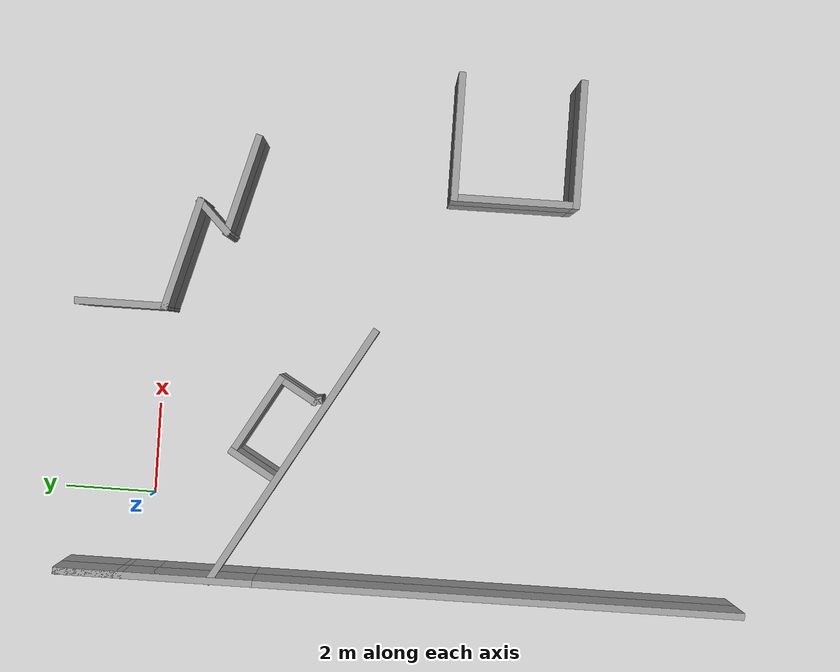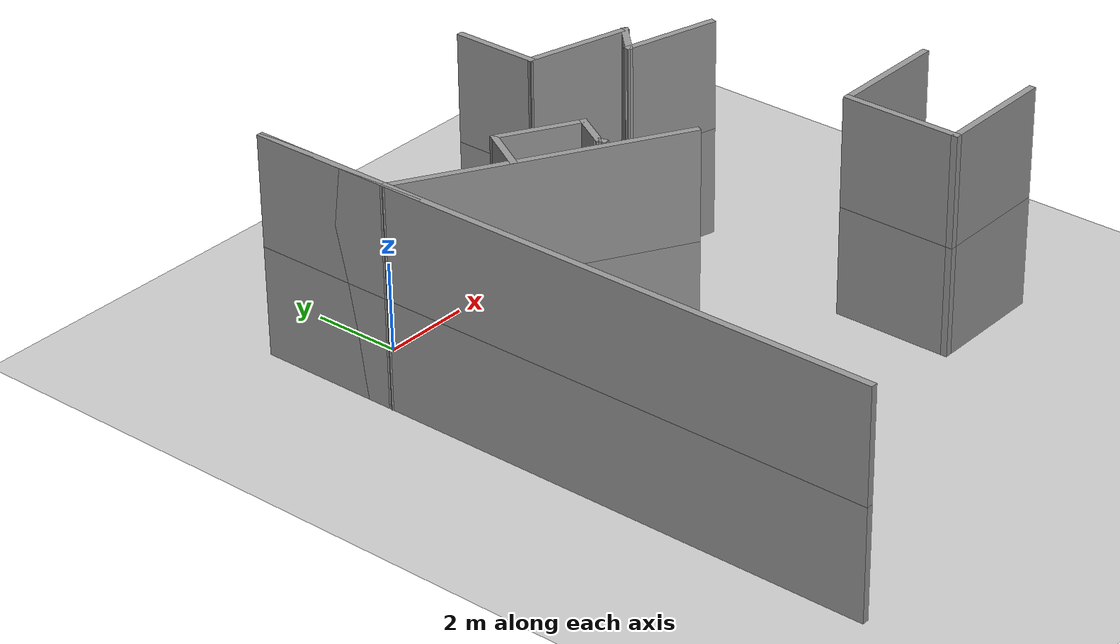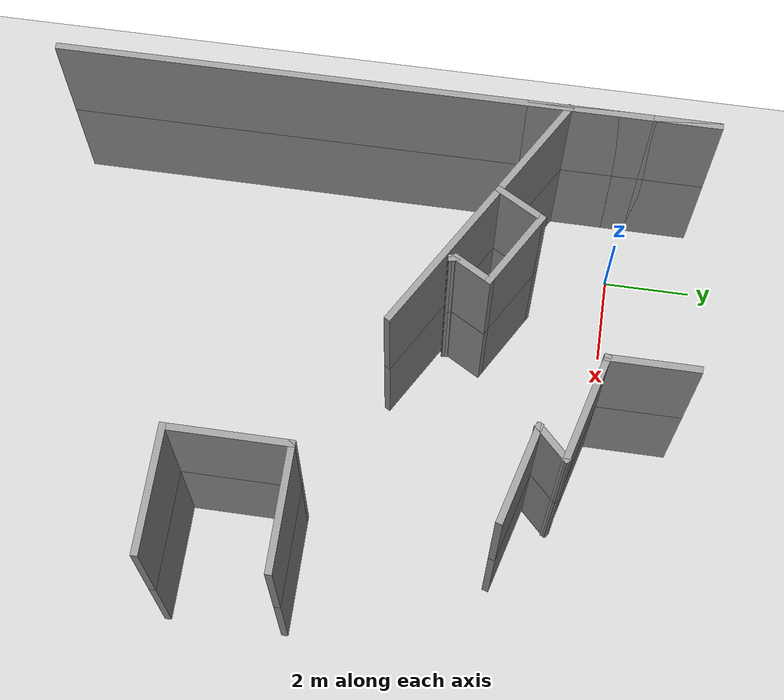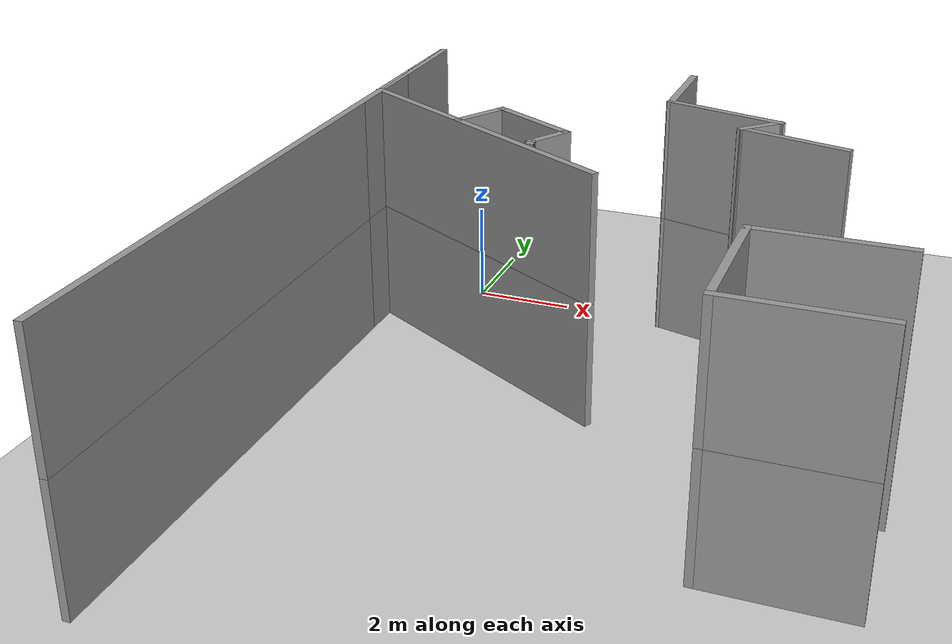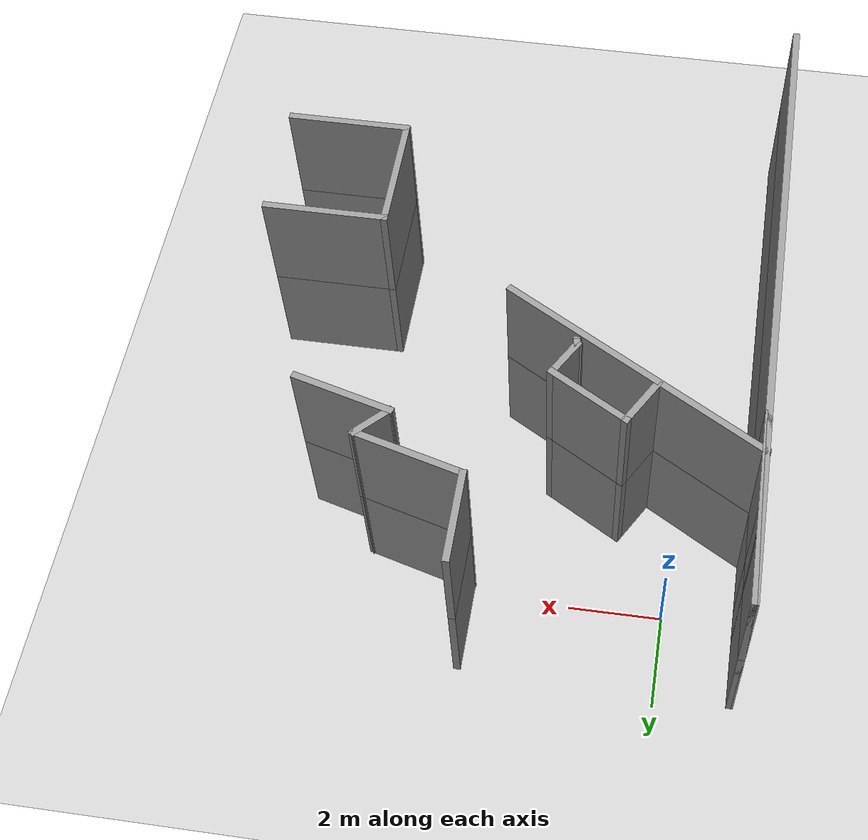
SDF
<sdf version="1.7">
 <world name="default">
  <model name="ground_plane">
   <static>1</static>
   <link name="link">
    <collision name="collision">
     <geometry><plane><normal>0 0 1</normal><size>100 100</size></plane></geometry>
     <surface><friction><ode><mu>100</mu><mu2>50</mu2></ode></friction></surface>
    </collision>
    <visual name="visual">
     <cast_shadows>0</cast_shadows>
     <geometry><plane><normal>0 0 1</normal><size>100 100</size></plane></geometry>
     <material>
      <script><uri>file://media/materials/scripts/gazebo.material</uri><name>Gazebo/Grey</name></script>
     </material>
    </visual>
   </link>
  </model>
  <model name="room_with_stairs">
   <pose>14.4299 -5.56754 0 0 -0 0</pose>
   <link name="Wall_1">
    <collision name="Wall_1_Collision">
     <geometry><box><size>1.5 0.15 2.5</size></box></geometry>
     <pose>0 0 1.25 0 -0 0</pose>
    </collision>
    <visual name="Wall_1_Visual">
     <pose>0 0 1.25 0 -0 0</pose>
     <geometry><box><size>1.5 0.15 2.5</size></box></geometry>
     <material>
      <script><uri>file://media/materials/scripts/gazebo.material</uri><name>Gazebo/Grey</name></script>
      <ambient>1 1 1 1</ambient>
     </material>
     <meta><layer>0</layer></meta>
    </visual>
    <pose>-16.0363 6.625 0 0 -0 1.5708</pose>
   </link>
   <link name="Wall_10">
    <collision name="Wall_10_Collision">
     <geometry><box><size>2 0.15 2.5</size></box></geometry>
     <pose>0 0 1.25 0 -0 0</pose>
    </collision>
    <visual name="Wall_10_Visual">
     <pose>0 0 1.25 0 -0 0</pose>
     <geometry><box><size>2 0.15 2.5</size></box></geometry>
     <material>
      <script><uri>file://media/materials/scripts/gazebo.material</uri><name>Gazebo/Grey</name></script>
      <ambient>1 1 1 1</ambient>
     </material>
     <meta><layer>0</layer></meta>
    </visual>
    <pose>-10.271 6.29375 0 0 -0 -1.5708</pose>
   </link>
   <link name="Wall_11">
    <collision name="Wall_11_Collision">
     <geometry><box><size>2.5 0.15 2.5</size></box></geometry>
     <pose>0 0 1.25 0 -0 0</pose>
    </collision>
    <visual name="Wall_11_Visual">
     <pose>0 0 1.25 0 -0 0</pose>
     <geometry><box><size>2.5 0.15 2.5</size></box></geometry>
     <material>
      <script><uri>file://media/materials/scripts/gazebo.material</uri><name>Gazebo/Grey</name></script>
      <ambient>1 1 1 1</ambient>
     </material>
     <meta><layer>0</layer></meta>
    </visual>
    <pose>-9.13605 5.06464 0 0 -0 -0.261799</pose>
   </link>
   <link name="Wall_12">
    <collision name="Wall_12_Collision">
     <geometry><box><size>1 0.15 2.5</size></box></geometry>
     <pose>0 0 1.25 0 -0 0</pose>
    </collision>
    <visual name="Wall_12_Visual">
     <pose>0 0 1.25 0 -0 0</pose>
     <geometry><box><size>1 0.15 2.5</size></box></geometry>
     <material>
      <script><uri>file://media/materials/scripts/gazebo.material</uri><name>Gazebo/Grey</name></script>
      <ambient>1 1 1 1</ambient>
     </material>
     <meta><layer>0</layer></meta>
    </visual>
    <pose>-8.30161 4.46001 0 0 -0 -2.35619</pose>
   </link>
   <link name="Wall_13">
    <collision name="Wall_13_Collision">
     <geometry><box><size>2.25 0.15 2.5</size></box></geometry>
     <pose>0 0 1.25 0 -0 0</pose>
    </collision>
    <visual name="Wall_13_Visual">
     <pose>0 0 1.25 0 -0 0</pose>
     <geometry><box><size>2.25 0.15 2.5</size></box></geometry>
     <material>
      <script><uri>file://media/materials/scripts/gazebo.material</uri><name>Gazebo/Grey</name></script>
      <ambient>1 1 1 1</ambient>
     </material>
     <meta><layer>0</layer></meta>
    </visual>
    <pose>-7.58791 3.88773 0 0 -0 -0.261799</pose>
   </link>
   <link name="Wall_19">
    <collision name="Wall_19_Collision">
     <geometry><box><size>1.25 0.15 2.5</size></box></geometry>
     <pose>0 0 1.25 0 -0 0</pose>
    </collision>
    <visual name="Wall_19_Visual">
     <pose>0 0 1.25 0 -0 0</pose>
     <geometry><box><size>1.25 0.15 2.5</size></box></geometry>
     <material>
      <script><uri>file://media/materials/scripts/gazebo.material</uri><name>Gazebo/Grey</name></script>
      <ambient>1 1 1 1</ambient>
     </material>
     <meta><layer>0</layer></meta>
    </visual>
    <pose>-13.5338 3.25283 0 0 -0 1.0472</pose>
   </link>
   <link name="Wall_2">
    <collision name="Wall_2_Collision">
     <geometry><box><size>4.25 0.15 2.5</size></box></geometry>
     <pose>0 0 1.25 0 -0 0</pose>
    </collision>
    <visual name="Wall_2_Visual">
     <pose>0 0 1.25 0 -0 0</pose>
     <geometry><box><size>4.25 0.15 2.5</size></box></geometry>
     <material>
      <script><uri>file://media/materials/scripts/gazebo.material</uri><name>Gazebo/Grey</name></script>
      <ambient>1 1 1 1</ambient>
     </material>
     <meta><layer>0</layer></meta>
    </visual>
    <pose>-16.0363 5.25 0 0 -0 -1.5708</pose>
   </link>
   <link name="Wall_20">
    <collision name="Wall_20_Collision">
     <geometry><box><size>2 0.15 2.5</size></box></geometry>
     <pose>0 0 1.25 0 -0 0</pose>
    </collision>
    <visual name="Wall_20_Visual">
     <pose>0 0 1.25 0 -0 0</pose>
     <geometry><box><size>2 0.15 2.5</size></box></geometry>
     <material>
      <script><uri>file://media/materials/scripts/gazebo.material</uri><name>Gazebo/Grey</name></script>
      <ambient>1 1 1 1</ambient>
     </material>
     <meta><layer>0</layer></meta>
    </visual>
    <pose>-12.4578 3.26665 0 0 -0 -0.523599</pose>
   </link>
   <link name="Wall_21">
    <collision name="Wall_21_Collision">
     <geometry><box><size>1 0.15 2.5</size></box></geometry>
     <pose>0 0 1.25 0 -0 0</pose>
    </collision>
    <visual name="Wall_21_Visual">
     <pose>0 0 1.25 0 -0 0</pose>
     <geometry><box><size>1 0.15 2.5</size></box></geometry>
     <material>
      <script><uri>file://media/materials/scripts/gazebo.material</uri><name>Gazebo/Grey</name></script>
      <ambient>1 1 1 1</ambient>
     </material>
     <meta><layer>0</layer></meta>
    </visual>
    <pose>-11.8692 2.43609 0 0 -0 -2.0944</pose>
   </link>
   <link name="Wall_22">
    <collision name="Wall_22_Collision">
     <geometry><box><size>0.25 0.15 2.5</size></box></geometry>
     <pose>0 0 1.25 0 -0 0</pose>
    </collision>
    <visual name="Wall_22_Visual">
     <pose>0 0 1.25 0 -0 0</pose>
     <geometry><box><size>0.25 0.15 2.5</size></box></geometry>
     <material>
      <script><uri>file://media/materials/scripts/gazebo.material</uri><name>Gazebo/Grey</name></script>
      <ambient>1 1 1 1</ambient>
     </material>
     <meta><layer>0</layer></meta>
    </visual>
    <pose>-12.0688 2.01973 0 0 -0 -1.309</pose>
   </link>
   <link name="Wall_23">
    <collision name="Wall_23_Collision">
     <geometry><box><size>0.15 0.15 2.5</size></box></geometry>
     <pose>0 0 1.25 0 -0 0</pose>
    </collision>
    <visual name="Wall_23_Visual">
     <pose>0 0 1.25 0 -0 0</pose>
     <geometry><box><size>0.15 0.15 2.5</size></box></geometry>
     <material>
      <script><uri>file://media/materials/scripts/gazebo.material</uri><name>Gazebo/Grey</name></script>
      <ambient>1 1 1 1</ambient>
     </material>
     <meta><layer>0</layer></meta>
    </visual>
    <pose>-12.0558 1.97143 0 0 -0 0</pose>
   </link>
   <link name="Wall_29">
    <collision name="Wall_29_Collision">
     <geometry><box><size>2.75 0.15 2.5</size></box></geometry>
     <pose>0 0 1.25 0 -0 0</pose>
    </collision>
    <visual name="Wall_29_Visual">
     <pose>0 0 1.25 0 -0 0</pose>
     <geometry><box><size>2.75 0.15 2.5</size></box></geometry>
     <material>
      <script><uri>file://media/materials/scripts/gazebo.material</uri><name>Gazebo/Grey</name></script>
      <ambient>1 1 1 1</ambient>
     </material>
     <meta><layer>0</layer></meta>
    </visual>
    <pose>-6.25287 -0.620172 0 0 -0 0</pose>
   </link>
   <link name="Wall_3">
    <collision name="Wall_3_Collision">
     <geometry><box><size>4.25 0.15 2.5</size></box></geometry>
     <pose>0 0 1.25 0 -0 0</pose>
    </collision>
    <visual name="Wall_3_Visual">
     <pose>0 0 1.25 0 -0 0</pose>
     <geometry><box><size>4.25 0.15 2.5</size></box></geometry>
     <material>
      <script><uri>file://media/materials/scripts/gazebo.material</uri><name>Gazebo/Grey</name></script>
      <ambient>1 1 1 1</ambient>
     </material>
     <meta><layer>0</layer></meta>
    </visual>
    <pose>-16.0363 5.25 0 0 -0 1.5708</pose>
   </link>
   <link name="Wall_31">
    <collision name="Wall_31_Collision">
     <geometry><box><size>2.75 0.15 2.5</size></box></geometry>
     <pose>0 0 1.25 0 -0 0</pose>
    </collision>
    <visual name="Wall_31_Visual">
     <pose>0 0 1.25 0 -0 0</pose>
     <geometry><box><size>2.75 0.15 2.5</size></box></geometry>
     <material>
      <script><uri>file://media/materials/scripts/gazebo.material</uri><name>Gazebo/Grey</name></script>
      <ambient>1 1 1 1</ambient>
     </material>
     <meta><layer>0</layer></meta>
    </visual>
    <pose>-6.25287 -3.22017 0 0 -0 3.14159</pose>
   </link>
   <link name="Wall_32">
    <collision name="Wall_32_Collision">
     <geometry><box><size>2.75 0.15 2.5</size></box></geometry>
     <pose>0 0 1.25 0 -0 0</pose>
    </collision>
    <visual name="Wall_32_Visual">
     <pose>0 0 1.25 0 -0 0</pose>
     <geometry><box><size>2.75 0.15 2.5</size></box></geometry>
     <material>
      <script><uri>file://media/materials/scripts/gazebo.material</uri><name>Gazebo/Grey</name></script>
      <ambient>1 1 1 1</ambient>
     </material>
     <meta><layer>0</layer></meta>
    </visual>
    <pose>-7.55287 -1.92017 0 0 -0 1.5708</pose>
   </link>
   <link name="Wall_39">
    <collision name="Wall_39_Collision">
     <geometry><box><size>1.5 0.15 2.5</size></box></geometry>
     <pose>0 0 1.25 0 -0 0</pose>
    </collision>
    <visual name="Wall_39_Visual">
     <pose>0 0 1.25 0 -0 0</pose>
     <geometry><box><size>1.5 0.15 2.5</size></box></geometry>
     <material>
      <script><uri>file://media/materials/scripts/gazebo.material</uri><name>Gazebo/Grey</name></script>
      <ambient>1 1 1 1</ambient>
     </material>
     <meta><layer>1</layer></meta>
    </visual>
    <pose>-16.0363 6.625 2.5 0 -0 1.5708</pose>
   </link>
   <link name="Wall_40">
    <collision name="Wall_40_Collision">
     <geometry><box><size>4.25 0.15 2.5</size></box></geometry>
     <pose>0 0 1.25 0 -0 0</pose>
    </collision>
    <visual name="Wall_40_Visual">
     <pose>0 0 1.25 0 -0 0</pose>
     <geometry><box><size>4.25 0.15 2.5</size></box></geometry>
     <material>
      <script><uri>file://media/materials/scripts/gazebo.material</uri><name>Gazebo/Grey</name></script>
      <ambient>1 1 1 1</ambient>
     </material>
     <meta><layer>1</layer></meta>
    </visual>
    <pose>-16.0363 5.25 2.5 0 -0 -1.5708</pose>
   </link>
   <link name="Wall_41">
    <collision name="Wall_41_Collision">
     <geometry><box><size>4.25 0.15 2.5</size></box></geometry>
     <pose>0 0 1.25 0 -0 0</pose>
    </collision>
    <visual name="Wall_41_Visual">
     <pose>0 0 1.25 0 -0 0</pose>
     <geometry><box><size>4.25 0.15 2.5</size></box></geometry>
     <material>
      <script><uri>file://media/materials/scripts/gazebo.material</uri><name>Gazebo/Grey</name></script>
      <ambient>1 1 1 1</ambient>
     </material>
     <meta><layer>1</layer></meta>
    </visual>
    <pose>-16.0363 5.25 2.5 0 -0 1.5708</pose>
   </link>
   <link name="Wall_45">
    <collision name="Wall_45_Collision">
     <geometry><box><size>11.5 0.15 2.5</size></box></geometry>
     <pose>0 0 1.25 0 -0 0</pose>
    </collision>
    <visual name="Wall_45_Visual">
     <pose>0 0 1.25 0 -0 0</pose>
     <geometry><box><size>11.5 0.15 2.5</size></box></geometry>
     <material>
      <script><uri>file://media/materials/scripts/gazebo.material</uri><name>Gazebo/Grey</name></script>
      <ambient>1 1 1 1</ambient>
     </material>
     <meta><layer>1</layer></meta>
    </visual>
    <pose>-16.0363 -1.625 2.5 0 -0 1.5708</pose>
   </link>
   <link name="Wall_46">
    <collision name="Wall_46_Collision">
     <geometry><box><size>6.5 0.15 2.5</size></box></geometry>
     <pose>0 0 1.25 0 -0 0</pose>
    </collision>
    <visual name="Wall_46_Visual">
     <pose>0 0 1.25 0 -0 0</pose>
     <geometry><box><size>6.5 0.15 2.5</size></box></geometry>
     <material>
      <script><uri>file://media/materials/scripts/gazebo.material</uri><name>Gazebo/Grey</name></script>
      <ambient>1 1 1 1</ambient>
     </material>
     <meta><layer>1</layer></meta>
    </visual>
    <pose>-13.2866 2.4625 2.5 0 -0 -0.523599</pose>
   </link>
   <link name="Wall_47">
    <collision name="Wall_47_Collision">
     <geometry><box><size>2 0.15 2.5</size></box></geometry>
     <pose>0 0 1.25 0 -0 0</pose>
    </collision>
    <visual name="Wall_47_Visual">
     <pose>0 0 1.25 0 -0 0</pose>
     <geometry><box><size>2 0.15 2.5</size></box></geometry>
     <material>
      <script><uri>file://media/materials/scripts/gazebo.material</uri><name>Gazebo/Grey</name></script>
      <ambient>1 1 1 1</ambient>
     </material>
     <meta><layer>1</layer></meta>
    </visual>
    <pose>-10.271 6.29375 2.5 0 -0 -1.5708</pose>
   </link>
   <link name="Wall_48">
    <collision name="Wall_48_Collision">
     <geometry><box><size>2.5 0.15 2.5</size></box></geometry>
     <pose>0 0 1.25 0 -0 0</pose>
    </collision>
    <visual name="Wall_48_Visual">
     <pose>0 0 1.25 0 -0 0</pose>
     <geometry><box><size>2.5 0.15 2.5</size></box></geometry>
     <material>
      <script><uri>file://media/materials/scripts/gazebo.material</uri><name>Gazebo/Grey</name></script>
      <ambient>1 1 1 1</ambient>
     </material>
     <meta><layer>1</layer></meta>
    </visual>
    <pose>-9.13605 5.06464 2.5 0 -0 -0.261799</pose>
   </link>
   <link name="Wall_49">
    <collision name="Wall_49_Collision">
     <geometry><box><size>1 0.15 2.5</size></box></geometry>
     <pose>0 0 1.25 0 -0 0</pose>
    </collision>
    <visual name="Wall_49_Visual">
     <pose>0 0 1.25 0 -0 0</pose>
     <geometry><box><size>1 0.15 2.5</size></box></geometry>
     <material>
      <script><uri>file://media/materials/scripts/gazebo.material</uri><name>Gazebo/Grey</name></script>
      <ambient>1 1 1 1</ambient>
     </material>
     <meta><layer>1</layer></meta>
    </visual>
    <pose>-8.30161 4.46001 2.5 0 -0 -2.35619</pose>
   </link>
   <link name="Wall_50">
    <collision name="Wall_50_Collision">
     <geometry><box><size>2.25 0.15 2.5</size></box></geometry>
     <pose>0 0 1.25 0 -0 0</pose>
    </collision>
    <visual name="Wall_50_Visual">
     <pose>0 0 1.25 0 -0 0</pose>
     <geometry><box><size>2.25 0.15 2.5</size></box></geometry>
     <material>
      <script><uri>file://media/materials/scripts/gazebo.material</uri><name>Gazebo/Grey</name></script>
      <ambient>1 1 1 1</ambient>
     </material>
     <meta><layer>1</layer></meta>
    </visual>
    <pose>-7.58791 3.88773 2.5 0 -0 -0.261799</pose>
   </link>
   <link name="Wall_54">
    <collision name="Wall_54_Collision">
     <geometry><box><size>1.25 0.15 2.5</size></box></geometry>
     <pose>0 0 1.25 0 -0 0</pose>
    </collision>
    <visual name="Wall_54_Visual">
     <pose>0 0 1.25 0 -0 0</pose>
     <geometry><box><size>1.25 0.15 2.5</size></box></geometry>
     <material>
      <script><uri>file://media/materials/scripts/gazebo.material</uri><name>Gazebo/Grey</name></script>
      <ambient>1 1 1 1</ambient>
     </material>
     <meta><layer>1</layer></meta>
    </visual>
    <pose>-13.5338 3.25283 2.5 0 -0 1.0472</pose>
   </link>
   <link name="Wall_55">
    <collision name="Wall_55_Collision">
     <geometry><box><size>2 0.15 2.5</size></box></geometry>
     <pose>0 0 1.25 0 -0 0</pose>
    </collision>
    <visual name="Wall_55_Visual">
     <pose>0 0 1.25 0 -0 0</pose>
     <geometry><box><size>2 0.15 2.5</size></box></geometry>
     <material>
      <script><uri>file://media/materials/scripts/gazebo.material</uri><name>Gazebo/Grey</name></script>
      <ambient>1 1 1 1</ambient>
     </material>
     <meta><layer>1</layer></meta>
    </visual>
    <pose>-12.4578 3.26665 2.5 0 -0 -0.523599</pose>
   </link>
   <link name="Wall_56">
    <collision name="Wall_56_Collision">
     <geometry><box><size>1 0.15 2.5</size></box></geometry>
     <pose>0 0 1.25 0 -0 0</pose>
    </collision>
    <visual name="Wall_56_Visual">
     <pose>0 0 1.25 0 -0 0</pose>
     <geometry><box><size>1 0.15 2.5</size></box></geometry>
     <material>
      <script><uri>file://media/materials/scripts/gazebo.material</uri><name>Gazebo/Grey</name></script>
      <ambient>1 1 1 1</ambient>
     </material>
     <meta><layer>1</layer></meta>
    </visual>
    <pose>-11.8692 2.43609 2.5 0 -0 -2.0944</pose>
   </link>
   <link name="Wall_57">
    <collision name="Wall_57_Collision">
     <geometry><box><size>0.25 0.15 2.5</size></box></geometry>
     <pose>0 0 1.25 0 -0 0</pose>
    </collision>
    <visual name="Wall_57_Visual">
     <pose>0 0 1.25 0 -0 0</pose>
     <geometry><box><size>0.25 0.15 2.5</size></box></geometry>
     <material>
      <script><uri>file://media/materials/scripts/gazebo.material</uri><name>Gazebo/Grey</name></script>
      <ambient>1 1 1 1</ambient>
     </material>
     <meta><layer>1</layer></meta>
    </visual>
    <pose>-12.0688 2.01973 2.5 0 -0 -1.309</pose>
   </link>
   <link name="Wall_58">
    <collision name="Wall_58_Collision">
     <geometry><box><size>0.15 0.15 2.5</size></box></geometry>
     <pose>0 0 1.25 0 -0 0</pose>
    </collision>
    <visual name="Wall_58_Visual">
     <pose>0 0 1.25 0 -0 0</pose>
     <geometry><box><size>0.15 0.15 2.5</size></box></geometry>
     <material>
      <script><uri>file://media/materials/scripts/gazebo.material</uri><name>Gazebo/Grey</name></script>
      <ambient>1 1 1 1</ambient>
     </material>
     <meta><layer>1</layer></meta>
    </visual>
    <pose>-12.0558 1.97143 2.5 0 -0 0</pose>
   </link>
   <link name="Wall_62">
    <collision name="Wall_62_Collision">
     <geometry><box><size>2.75 0.15 2.5</size></box></geometry>
     <pose>0 0 1.25 0 -0 0</pose>
    </collision>
    <visual name="Wall_62_Visual">
     <pose>0 0 1.25 0 -0 0</pose>
     <geometry><box><size>2.75 0.15 2.5</size></box></geometry>
     <material>
      <script><uri>file://media/materials/scripts/gazebo.material</uri><name>Gazebo/Grey</name></script>
      <ambient>1 1 1 1</ambient>
     </material>
     <meta><layer>1</layer></meta>
    </visual>
    <pose>-6.25287 -0.620171 2.5 0 -0 0</pose>
   </link>
   <link name="Wall_64">
    <collision name="Wall_64_Collision">
     <geometry><box><size>2.75 0.15 2.5</size></box></geometry>
     <pose>0 0 1.25 0 -0 0</pose>
    </collision>
    <visual name="Wall_64_Visual">
     <pose>0 0 1.25 0 -0 0</pose>
     <geometry><box><size>2.75 0.15 2.5</size></box></geometry>
     <material>
      <script><uri>file://media/materials/scripts/gazebo.material</uri><name>Gazebo/Grey</name></script>
      <ambient>1 1 1 1</ambient>
     </material>
     <meta><layer>1</layer></meta>
    </visual>
    <pose>-6.25287 -3.22017 2.5 0 -0 3.14159</pose>
   </link>
   <link name="Wall_65">
    <collision name="Wall_65_Collision">
     <geometry><box><size>2.75 0.15 2.5</size></box></geometry>
     <pose>0 0 1.25 0 -0 0</pose>
    </collision>
    <visual name="Wall_65_Visual">
     <pose>0 0 1.25 0 -0 0</pose>
     <geometry><box><size>2.75 0.15 2.5</size></box></geometry>
     <material>
      <script><uri>file://media/materials/scripts/gazebo.material</uri><name>Gazebo/Grey</name></script>
      <ambient>1 1 1 1</ambient>
     </material>
     <meta><layer>1</layer></meta>
    </visual>
    <pose>-7.55287 -1.92017 2.5 0 -0 1.5708</pose>
   </link>
   <link name="Wall_7">
    <collision name="Wall_7_Collision">
     <geometry><box><size>11.5 0.15 2.5</size></box></geometry>
     <pose>0 0 1.25 0 -0 0</pose>
    </collision>
    <visual name="Wall_7_Visual">
     <pose>0 0 1.25 0 -0 0</pose>
     <geometry><box><size>11.5 0.15 2.5</size></box></geometry>
     <material>
      <script><uri>file://media/materials/scripts/gazebo.material</uri><name>Gazebo/Grey</name></script>
      <ambient>1 1 1 1</ambient>
     </material>
     <meta><layer>0</layer></meta>
    </visual>
    <pose>-16.0363 -1.625 0 0 -0 1.5708</pose>
   </link>
   <link name="Wall_8">
    <collision name="Wall_8_Collision">
     <geometry><box><size>6.5 0.15 2.5</size></box></geometry>
     <pose>0 0 1.25 0 -0 0</pose>
    </collision>
    <visual name="Wall_8_Visual">
     <pose>0 0 1.25 0 -0 0</pose>
     <geometry><box><size>6.5 0.15 2.5</size></box></geometry>
     <material>
      <script><uri>file://media/materials/scripts/gazebo.material</uri><name>Gazebo/Grey</name></script>
      <ambient>1 1 1 1</ambient>
     </material>
     <meta><layer>0</layer></meta>
    </visual>
    <pose>-13.2866 2.4625 0 0 -0 -0.523599</pose>
   </link>
   <static>1</static>
  </model>
 </world>
</sdf>
